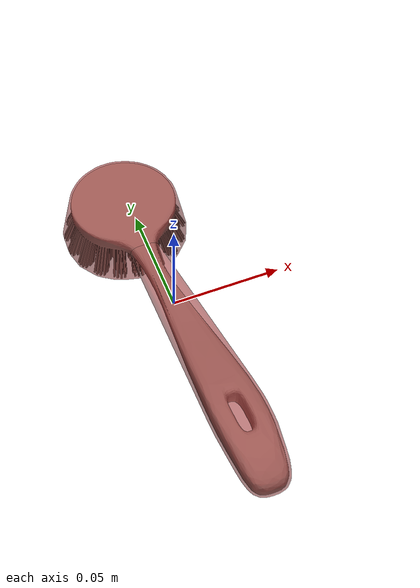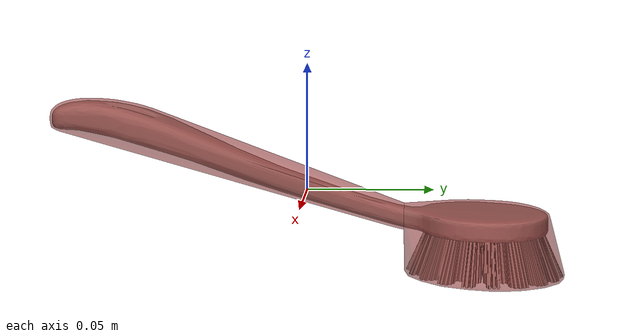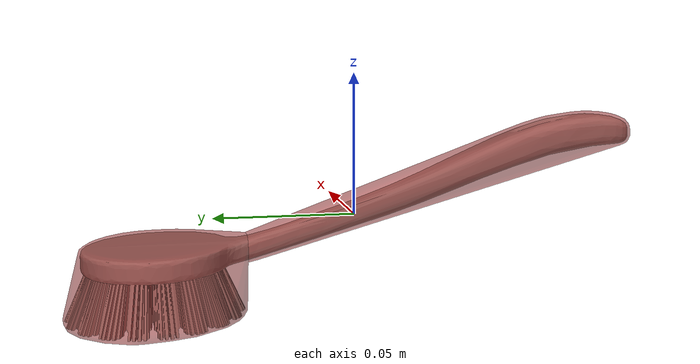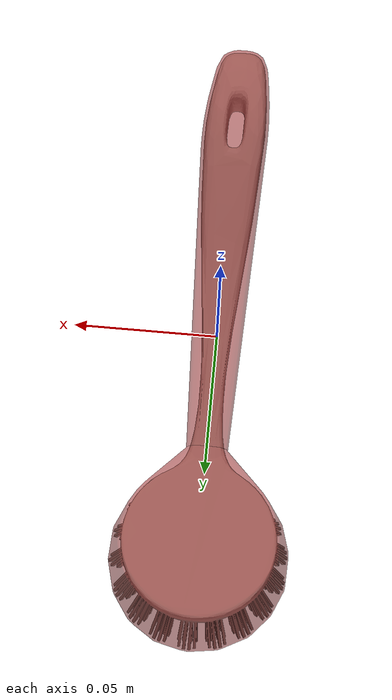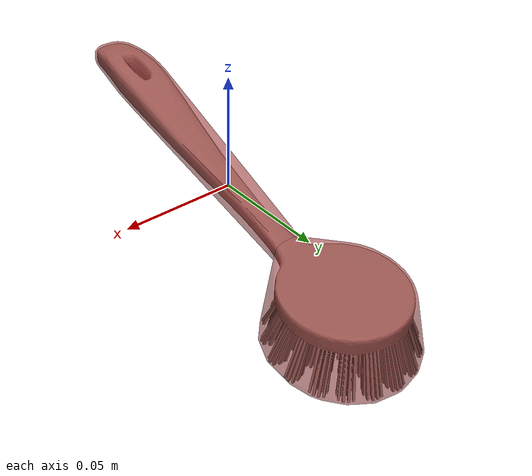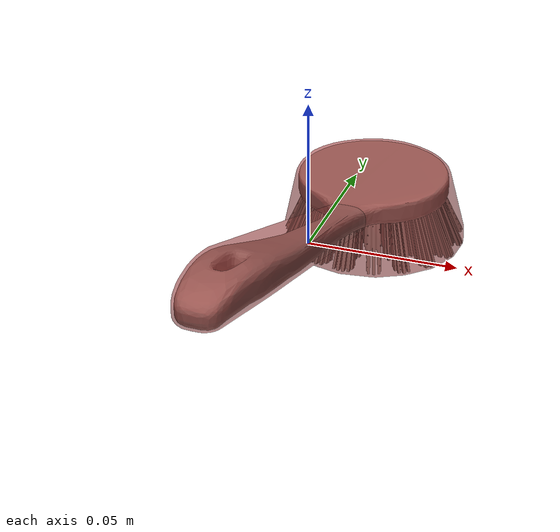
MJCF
<mujoco model="model">
  <option timestep="0.002" gravity="0.0 0.0 -9.81"/>
  <compiler angle="radian"/>
  <asset>
    <mesh file="visual/DishBrush004.obj" name="DishBrush004_vis"/>
    <texture file="visual/T_BC001.png" name="DishBrush004_material" type="2d"/>
    <material name="DishBrush004_material" rgba="1 1 1 1.0" texture="DishBrush004_material" shininess="0.5" specular="0.3103448502657381"/>
    <mesh file="collision/collision_mesh_collision_0.obj" name="DishBrush004_collision_mesh_0"/>
    <mesh file="collision/collision_mesh_collision_1.obj" name="DishBrush004_collision_mesh_1"/>
  </asset>
  <default>
    <default class="visual">
      <geom conaffinity="0" contype="0" group="1" type="mesh"/>
    </default>
    <default class="collision">
      <geom group="0" rgba="0.5 0 0 0.5" density="1.0" solref="0.004 1" solimp="0.998 0.998 0.001"/>
    </default>
    <default class="spawn">
      <geom group="0" rgba="1 1 1 0.5" contype="0" conaffinity="0"/>
      <site group="0" rgba="1 1 1 0.5"/>
    </default>
    <default class="region">
      <geom group="1" conaffinity="0" contype="0" rgba="0 1 0 0" mass="0"/>
    </default>
  </default>
  <worldbody>
    <body>
      <body name="object">
        <geom mesh="DishBrush004_vis" type="mesh" solimp="0.998 0.998 0.001" solref="0.001 1" friction="0.95 0.3 0.1" class="visual" material="DishBrush004_material"/>
        <geom class="region" name="reg_bbox" type="box" pos="-3.548000000000093e-05 -0.0002249350000000025 -1.5140000000000292e-05" size="0.031252020000000005 0.102187375 0.0350688"/>
        <geom mesh="DishBrush004_collision_mesh_0" type="mesh" class="collision"/>
        <geom mesh="DishBrush004_collision_mesh_1" type="mesh" class="collision"/>
      </body>
    </body>
  </worldbody>
  <actuator/>
</mujoco>
